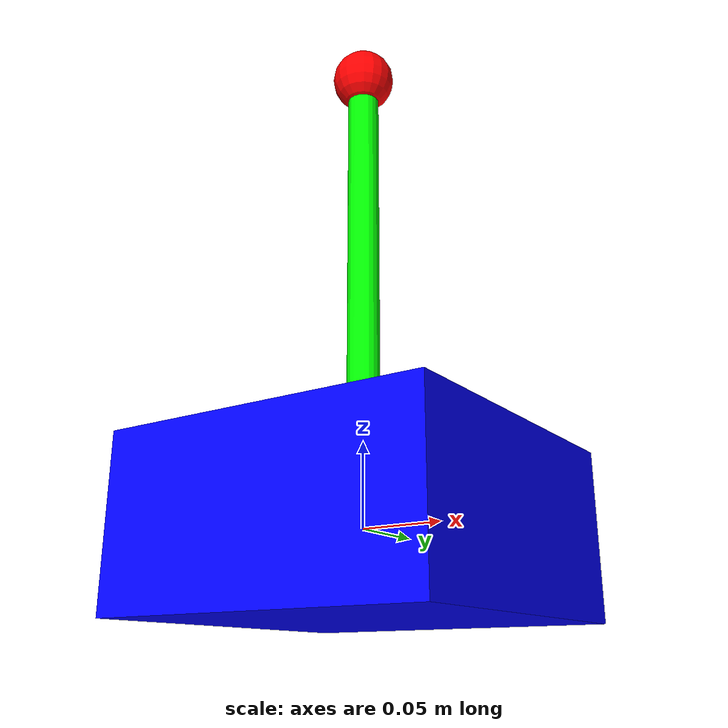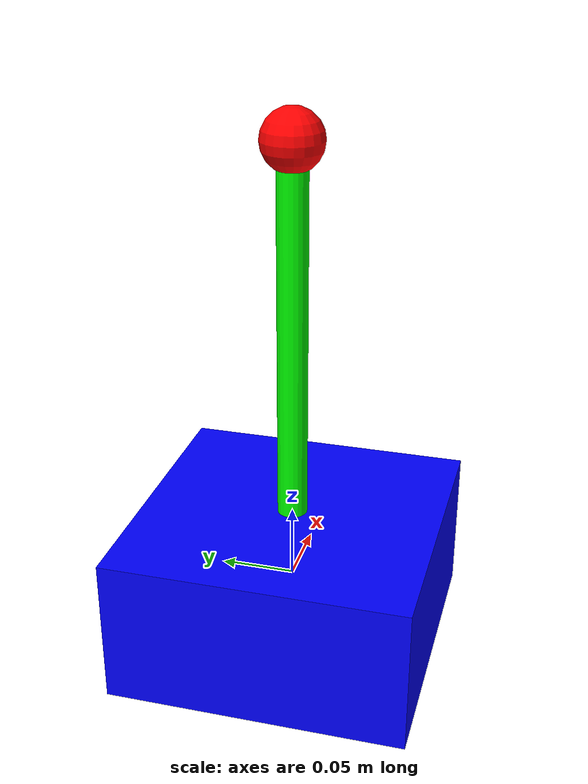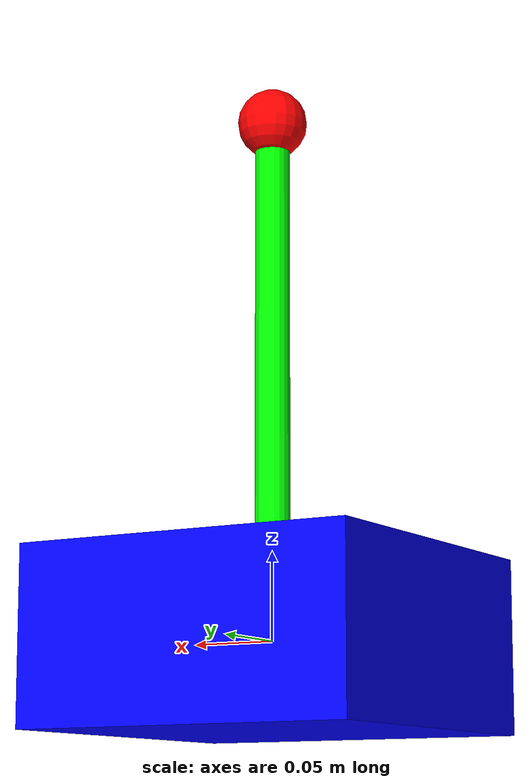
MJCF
<mujoco model="cartpole">
	<compiler angle="radian"/>
	<option gravity="0 0 -9.81" integrator="RK4" timestep="0.000005"/>

		<asset>
			<texture type="skybox" builtin="gradient" rgb1="0.3 0.5 0.7" rgb2="0 0 0" width="512" height="3072" />
			<texture type="2d" name="floor" builtin="checker" mark="edge" rgb1="0.2 0.3 0.4" rgb2="0.1 0.2 0.3" markrgb="0.8 0.8 0.8" width="300" height="300" />
			<material name="floor" texture="floor" texuniform="true" texrepeat="5 5" reflectance="0.5" />
		</asset>

		<visual>
			<headlight diffuse="0.6 0.6 0.6" ambient="0.3 0.3 0.3" specular="0 0 0" />
		</visual>

		<worldbody>

			<light name="spotlight0" mode="targetbodycom" target="cart" pos="0 0 10" cutoff="60" />
			<light name="spotlight1" mode="targetbodycom" target="cart" pos="0.5 0 10" cutoff="60" />

            <!-- cart body -->
			<body name="cart" pos="0 0 0">
				<!-- slider joint along x -->
				<joint name="slider" type="slide" axis="1 0 0"/>
				<!-- cart geometry, mass = 1 kg -->
				<geom name="cart" type="box" size="0.10 0.10 0.05" mass="1.0" rgba="0 0 1 1"/>
				<!-- pole hinge pivot, placed on top of the cart -->
                <body name="pole_base" pos="0 0 0">
					<!-- hinge in the x–z plane, rotate about -y -->
					<joint name="hinge" type="hinge" axis="0 -1 0"/>
					<!-- massless visual pole: capsule of length L = 0.3 m -->
					<geom name="pole_visual"
						type="capsule"
						fromto="0 0 0   0 0 0.3"
						size="0.01"
						density="0"
						contype="0" conaffinity="0"
						rgba="0 1 0 1"/>
					<!-- tip mass: sphere of mass 0.2 kg located at the end of the pole -->
					<body name="tip" pos="0 0 0.3">
                        <geom name="ball" type="sphere" size="0.02" mass="0.2" rgba="1 0 0 1"/>
			        </body>
			    </body>
			</body>
		</worldbody>

        <actuator>
            <motor name="slider" joint="slider"/>
        </actuator>

		<keyframe>
			<!-- pi/6 = 0.5235987756 -->
			<key name="up"
				qpos="0 0.5235987756"
				qvel="0 0"
				/>
		</keyframe>
</mujoco>
